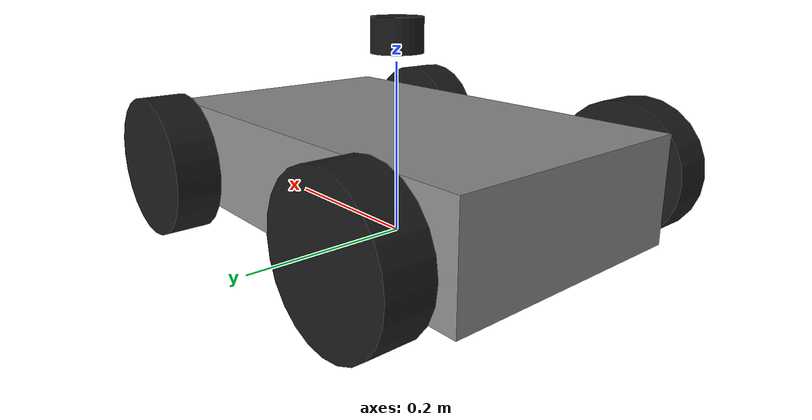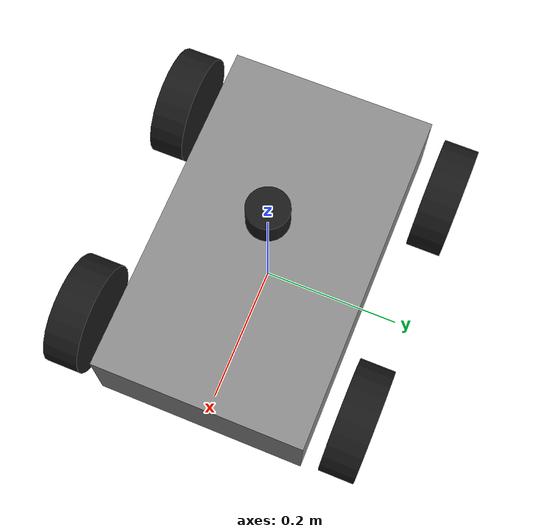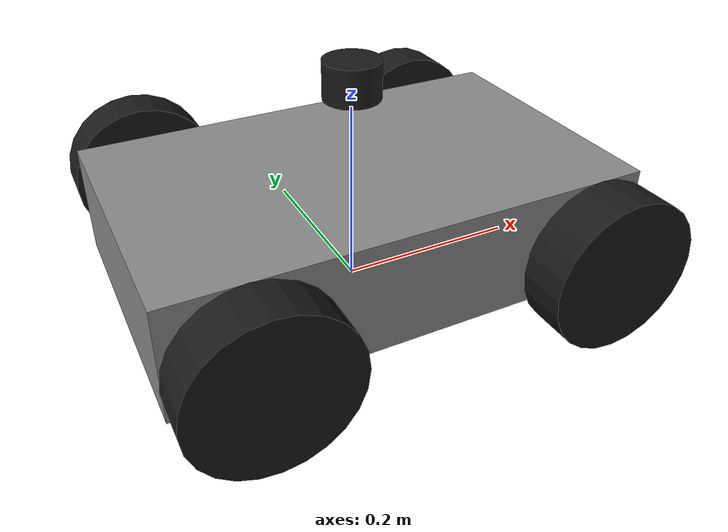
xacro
<?xml version="1.0"?>

<robot name="rover" xmlns:xacro="http://www.ros.org/wiki/xacro">

  <xacro:include filename="$(find robotDescription)/URDF/common_properties.xacro"/>
  <xacro:include filename="$(find robotDescription)/URDF/materials.xacro"/>
  <xacro:include filename="$(find robotDescription)/URDF/inertial_macros.xacro"/>
  <xacro:include filename="$(find robotDescription)/URDF/chassis.xacro"/>
  <xacro:include filename="$(find robotDescription)/URDF/wheel.xacro"/>
  <xacro:include filename="$(find robotDescription)/URDF/lidar.xacro"/>

  <!-- Passive front wheels -->
  <xacro:rover_wheel prefix="front_left"  x="${wheelbase/2}"  y="${track_width/2}"  z="0"/>
  <xacro:rover_wheel prefix="front_right" x="${wheelbase/2}"  y="${-track_width/2}" z="0"/>

  <!-- Driven rear wheels -->
  <xacro:rover_wheel prefix="rear_left"   x="${-wheelbase/2}" y="${track_width/2}"  z="0"/>
  <xacro:rover_wheel prefix="rear_right"  x="${-wheelbase/2}" y="${-track_width/2}" z="0"/>

  <xacro:include filename="$(find robotDescription)/URDF/ros2_control.xacro"/>
  <xacro:include filename="$(find robotDescription)/URDF/gazebo.xacro"/>

</robot>

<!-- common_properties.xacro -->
<robot xmlns:xacro="http://www.ros.org/wiki/xacro">

  <xacro:property name="PI" value="3.14159265359"/>

  <xacro:property name="chassis_length" value="0.50"/>
  <xacro:property name="chassis_width"  value="0.30"/>
  <xacro:property name="chassis_height" value="0.12"/>
  <xacro:property name="chassis_mass"   value="8.0"/>

  <xacro:property name="wheel_radius" value="0.08"/>
  <xacro:property name="wheel_width"  value="0.05"/>
  <xacro:property name="wheel_mass"   value="0.6"/>

  <xacro:property name="wheelbase"    value="0.35"/>
  <xacro:property name="track_width"  value="0.40"/>

</robot>

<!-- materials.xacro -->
<robot xmlns:xacro="http://www.ros.org/wiki/xacro">

  <material name="chassis_grey">
    <color rgba="0.55 0.55 0.55 1.0"/>
  </material>

  <material name="wheel_black">
    <color rgba="0.1 0.1 0.1 1.0"/>
  </material>

</robot>

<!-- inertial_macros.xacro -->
<robot xmlns:xacro="http://www.ros.org/wiki/xacro">

  <xacro:macro name="inertial_box" params="mass x y z xyz:='0 0 0' rpy:='0 0 0'">
    <inertial>
      <origin xyz="${xyz}" rpy="${rpy}"/>
      <mass value="${mass}"/>
      <inertia
        ixx="${(1/12) * mass * (y*y + z*z)}" ixy="0.0" ixz="0.0"
        iyy="${(1/12) * mass * (x*x + z*z)}" iyz="0.0"
        izz="${(1/12) * mass * (x*x + y*y)}"/>
    </inertial>
  </xacro:macro>

  <xacro:macro name="inertial_cylinder" params="mass radius length xyz:='0 0 0' rpy:='0 0 0'">
    <inertial>
      <origin xyz="${xyz}" rpy="${rpy}"/>
      <mass value="${mass}"/>
      <inertia
        ixx="${(1/12) * mass * (3*radius*radius + length*length)}" ixy="0.0" ixz="0.0"
        iyy="${(1/12) * mass * (3*radius*radius + length*length)}" iyz="0.0"
        izz="${0.5 * mass * radius*radius}"/>
    </inertial>
  </xacro:macro>

  <xacro:macro name="inertial_sphere" params="mass radius xyz:='0 0 0' rpy:='0 0 0'">
    <inertial>
      <origin xyz="${xyz}" rpy="${rpy}"/>
      <mass value="${mass}"/>
      <inertia
        ixx="${(2/5) * mass * radius*radius}" ixy="0.0" ixz="0.0"
        iyy="${(2/5) * mass * radius*radius}" iyz="0.0"
        izz="${(2/5) * mass * radius*radius}"/>
    </inertial>
  </xacro:macro>

</robot>

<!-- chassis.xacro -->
<robot xmlns:xacro="http://www.ros.org/wiki/xacro">

  <link name="base_footprint"/>

  <joint name="base_footprint_joint" type="fixed">
    <parent link="base_footprint"/>
    <child link="base_link"/>
    <origin xyz="0 0 ${wheel_radius}" rpy="0 0 0"/>
  </joint>

  <link name="base_link">
    <visual>
      <origin xyz="0 0 0" rpy="0 0 0"/>
      <geometry>
        <box size="${chassis_length} ${chassis_width} ${chassis_height}"/>
      </geometry>
      <material name="chassis_grey"/>
    </visual>
    <collision>
      <origin xyz="0 0 0" rpy="0 0 0"/>
      <geometry>
        <box size="${chassis_length} ${chassis_width} ${chassis_height}"/>
      </geometry>
    </collision>
    <xacro:inertial_box mass="${chassis_mass}" x="${chassis_length}" y="${chassis_width}" z="${chassis_height}"/>
  </link>

</robot>

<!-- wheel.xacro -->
<robot xmlns:xacro="http://www.ros.org/wiki/xacro">

  <xacro:macro name="rover_wheel" params="prefix x y z">
    <link name="${prefix}_wheel_link">
      <visual>
        <origin xyz="0 0 0" rpy="${PI/2} 0 0"/>
        <geometry>
          <cylinder radius="${wheel_radius}" length="${wheel_width}"/>
        </geometry>
        <material name="wheel_black"/>
      </visual>
      <collision>
        <origin xyz="0 0 0" rpy="${PI/2} 0 0"/>
        <geometry>
          <cylinder radius="${wheel_radius}" length="${wheel_width}"/>
        </geometry>
      </collision>
      <xacro:inertial_cylinder mass="${wheel_mass}" radius="${wheel_radius}" length="${wheel_width}" rpy="${PI/2} 0 0"/>
    </link>

    <joint name="${prefix}_wheel_joint" type="continuous">
      <parent link="base_link"/>
      <child link="${prefix}_wheel_link"/>
      <origin xyz="${x} ${y} ${z}" rpy="0 0 0"/>
      <axis xyz="0 1 0"/>
      <dynamics damping="0.1" friction="0.05"/>
    </joint>
  </xacro:macro>

</robot>

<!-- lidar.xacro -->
<robot xmlns:xacro="http://www.ros.org/wiki/xacro">

  <xacro:property name="lidar_radius" value="0.03"/>
  <xacro:property name="lidar_height" value="0.04"/>
  <xacro:property name="lidar_mass"   value="0.05"/>
  <xacro:property name="lidar_wheel_clearance" value="0.05"/>

  <link name="lidar_link">
    <visual>
      <geometry>
        <cylinder radius="${lidar_radius}" length="${lidar_height}"/>
      </geometry>
      <material name="wheel_black"/>
    </visual>
    <collision>
      <geometry>
        <cylinder radius="${lidar_radius}" length="${lidar_height}"/>
      </geometry>
    </collision>
    <xacro:inertial_cylinder mass="${lidar_mass}" radius="${lidar_radius}" length="${lidar_height}"/>
  </link>

  <joint name="lidar_joint" type="fixed">
    <parent link="base_link"/>
    <child link="lidar_link"/>
    <origin xyz="0 0 ${wheel_radius + lidar_wheel_clearance + lidar_height/2}" rpy="0 0 0"/>
  </joint>

  <gazebo reference="lidar_joint">
    <disableFixedJointLumping>true</disableFixedJointLumping>
  </gazebo>

  <gazebo reference="lidar_link">
    <sensor name="gpu_lidar" type="gpu_lidar">
      <pose>0 0 0 0 0 0</pose>
      <topic>scan</topic>
      <update_rate>10</update_rate>
      <always_on>true</always_on>
      <visualize>true</visualize>
      <lidar>
        <scan>
          <horizontal>
            <samples>360</samples>
            <resolution>1</resolution>
            <min_angle>-3.14159265</min_angle>
            <max_angle>3.14159265</max_angle>
          </horizontal>
          <vertical>
            <samples>1</samples>
            <resolution>1</resolution>
            <min_angle>0</min_angle>
            <max_angle>0</max_angle>
          </vertical>
        </scan>
        <range>
          <min>0.12</min>
          <max>10.0</max>
          <resolution>0.01</resolution>
        </range>
        <noise>
          <type>gaussian</type>
          <mean>0.0</mean>
          <stddev>0.01</stddev>
        </noise>
      </lidar>
    </sensor>
  </gazebo>

</robot>
